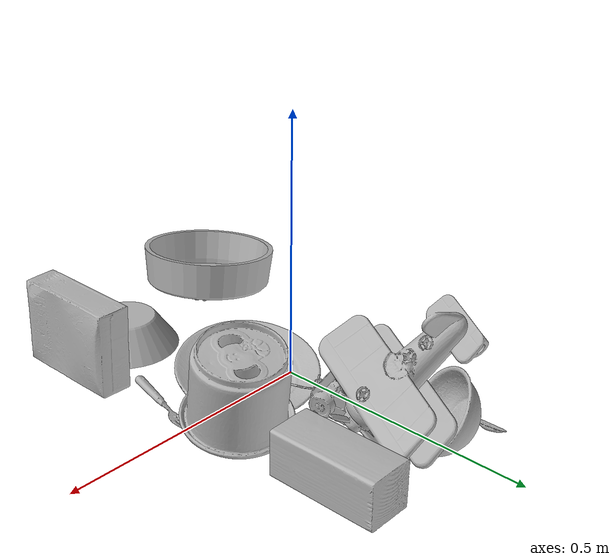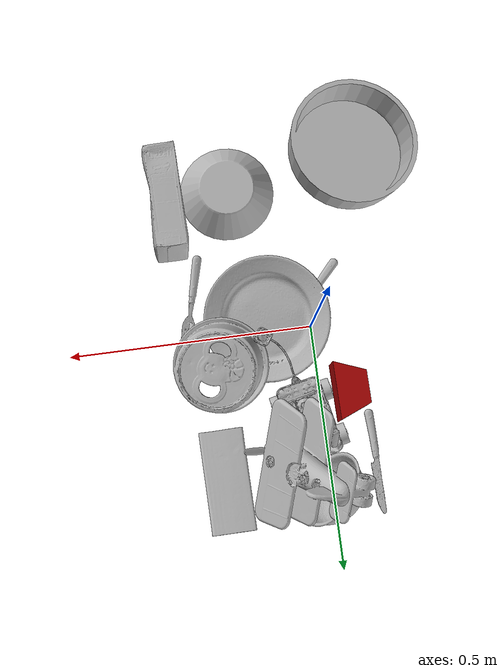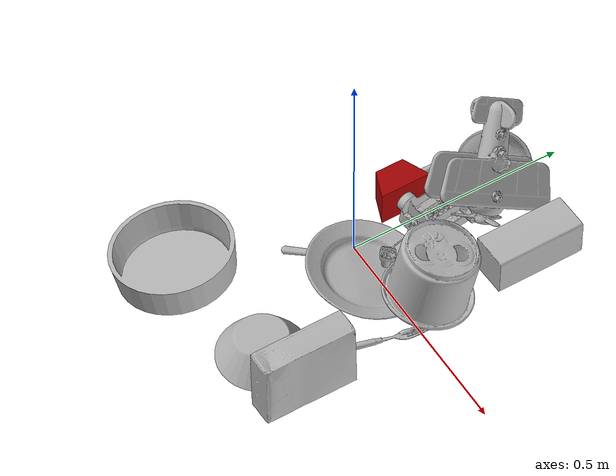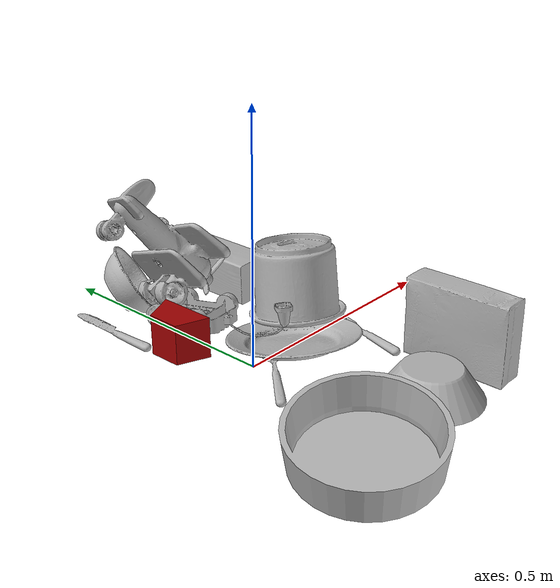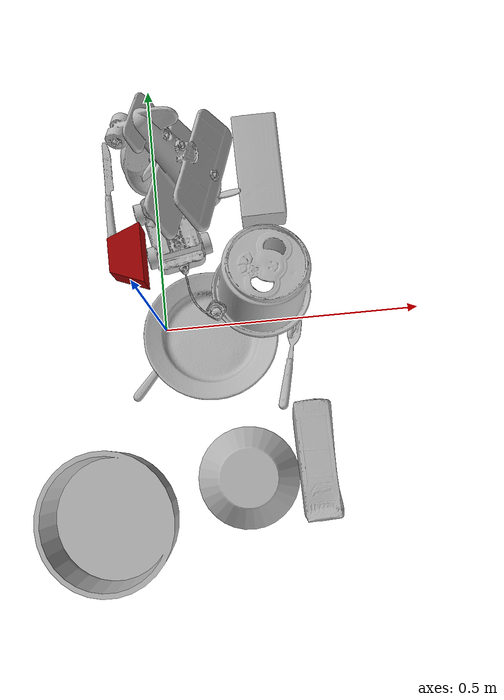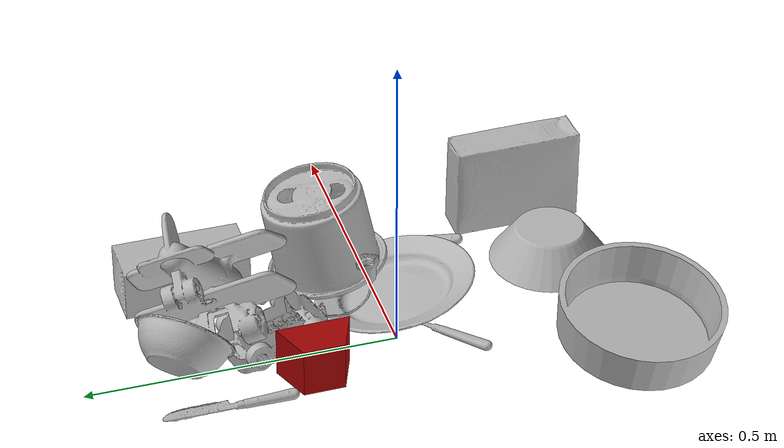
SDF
<sdf version="1.4">
  <world name="default">
    <light name="light1" type="point">
      <pose>0 0 1 0 0 0</pose>
      <diffuse>3 3 3 1</diffuse>
      <specular>3 3 3 1</specular>
    </light>
    <light name="light2" type="point">
      <pose>0 0.5 2 0 0 0</pose>
      <diffuse>1 1 1 1</diffuse>
      <specular>1 1 1 1</specular>
    </light>
    <light name="light3" type="point">
      <pose>0 0.5 2 0 0 0</pose>
      <diffuse>3 3 3 1</diffuse>
      <specular>3 3 3 1</specular>
    </light>
    <scene>
      <ambient>0.7 0.7 0.7</ambient>
    </scene>
    <model name="plate1">
      <link name="link_plate1">
        <collision name="default">
          <geometry>
            <mesh>
              <uri>model://plate/collision_meshes/collision.obj</uri>
              <scale>1.0 1.0 1.0</scale>
            </mesh>
          </geometry>
          <surface>
            <friction>
              <ode>
                <mu>0.5</mu>
                <mu2>0.5</mu2>
              </ode>
            </friction>
          <contact>
        <ode>
            <max_vel>0</max_vel>
            <min_depth>0.0001</min_depth>
            <kp>1e8</kp>
        </ode>
    </contact></surface>
        </collision>
        <visual name="default">
          <geometry>
            <mesh>
              <uri>model://plate/visual_meshes/visual.dae</uri>
              <scale>1.0 1.0 1.0</scale>
            </mesh>
          </geometry>
        </visual>
        <inertial>
          <mass>0.18013060092926025</mass>
          <pose>-0.0006044624606147408 0.0002782579977065325 -0.0010561981471255422 0.0022187543261248163 -0.003225499970721242 0.452618951787785</pose>
          <inertia>
            <ixx>0.00084265455</ixx>
            <iyy>0.000834595</iyy>
            <izz>0.0016481068</izz>
            <ixy>0</ixy>
            <ixz>0</ixz>
            <iyz>0</iyz>
          </inertia>
        </inertial>
      </link>
      <pose>0.0875125601887703 -0.02423202432692051 0.029876960441470146 -0.21210927722958772 -0.01004176545805839 -0.5371114681004846</pose>
    </model>
    <model name="plate2">
      <link name="link_plate2">
        <collision name="default">
          <geometry>
            <mesh>
              <uri>model://pan_tefal/collision_meshes/collision.obj</uri>
              <scale>1.0 1.0 1.0</scale>
            </mesh>
          </geometry>
          <surface>
            <friction>
              <ode>
                <mu>0.5</mu>
                <mu2>0.5</mu2>
              </ode>
            </friction>
          <contact>
        <ode>
            <max_vel>0</max_vel>
            <min_depth>0.0001</min_depth>
            <kp>1e8</kp>
        </ode>
    </contact></surface>
        </collision>
        <visual name="default">
          <geometry>
            <mesh>
              <uri>model://pan_tefal/visual_meshes/visual.dae</uri>
              <scale>1.0 1.0 1.0</scale>
            </mesh>
          </geometry>
        </visual>
        <inertial>
          <mass>1.1554980278015137</mass>
          <pose>-0.00018001958960667253 3.279018710600212e-05 -0.008514934219419956 0.0008190268412404128 -0.0003301434555644904 -0.33185316474518306</pose>
          <inertia>
            <ixx>0.007976347</ixx>
            <iyy>0.008027771</iyy>
            <izz>0.014682918</izz>
            <ixy>0</ixy>
            <ixz>0</ixz>
            <iyz>0</iyz>
          </inertia>
        </inertial>
      </link>
      <pose>-0.1286882758140564 -0.354366660118103 0.05685608088970184 -0.15908616914460416 0.012276188366651125 2.0978493002892065</pose>
    </model>
    <model name="bowl1">
      <link name="link_bowl1">
        <collision name="default">
          <geometry>
            <mesh>
              <uri>model://bowl/collision_meshes/collision.obj</uri>
              <scale>1.0 1.0 1.0</scale>
            </mesh>
          </geometry>
          <surface>
            <friction>
              <ode>
                <mu>0.5</mu>
                <mu2>0.5</mu2>
              </ode>
            </friction>
          <contact>
        <ode>
            <max_vel>0</max_vel>
            <min_depth>0.0001</min_depth>
            <kp>1e8</kp>
        </ode>
    </contact></surface>
        </collision>
        <visual name="default">
          <geometry>
            <mesh>
              <uri>model://bowl/visual_meshes/visual.dae</uri>
              <scale>1.0 1.0 1.0</scale>
            </mesh>
          </geometry>
        </visual>
        <inertial>
          <mass>0.08154366910457611</mass>
          <pose>0.0002044497523456812 -0.0010302083101123571 -0.0008042664267122746 -0.01576409235239578 0.014546819263349199 0.7140418673414882</pose>
          <inertia>
            <ixx>0.00018731231</ixx>
            <iyy>0.000183127</iyy>
            <izz>0.00031512365</izz>
            <ixy>0</ixy>
            <ixz>0</ixz>
            <iyz>0</iyz>
          </inertia>
        </inertial>
      </link>
      <pose>-0.003842337988317013 0.3479325473308563 0.057393696159124374 -0.7839589686362073 -0.6903742648212069 -2.7766881213005035</pose>
    </model>
    <model name="bowl2">
      <link name="link_bowl2">
        <collision name="default">
          <geometry>
            <mesh>
              <uri>model://bowl_a/collision_meshes/collision.obj</uri>
              <scale>1.0 1.0 1.0</scale>
            </mesh>
          </geometry>
          <surface>
            <friction>
              <ode>
                <mu>0.5</mu>
                <mu2>0.5</mu2>
              </ode>
            </friction>
          <contact>
        <ode>
            <max_vel>0</max_vel>
            <min_depth>0.0001</min_depth>
            <kp>1e8</kp>
        </ode>
    </contact></surface>
        </collision>
        <visual name="default">
          <geometry>
            <mesh>
              <uri>model://bowl_a/visual_meshes/visual.dae</uri>
              <scale>1.0 1.0 1.0</scale>
            </mesh>
          </geometry>
        </visual>
        <inertial>
          <mass>0.4363987147808075</mass>
          <pose>0.0002786752884276211 4.73113359475974e-05 -0.0013765294570475817 -0.0009805318297205425 -0.0010938254473046036 -0.19123908587825994</pose>
          <inertia>
            <ixx>0.0012424473</ixx>
            <iyy>0.001250075</iyy>
            <izz>0.0022097398</izz>
            <ixy>0</ixy>
            <ixz>0</ixz>
            <iyz>0</iyz>
          </inertia>
        </inertial>
      </link>
      <pose>0.13574431836605072 -0.30127283930778503 0.030101004987955093 3.1415743769095825 1.0735847737825789e-05 -0.08091751807818892</pose>
    </model>
    <model name="silverware1">
      <link name="link_silverware1">
        <collision name="default">
          <geometry>
            <mesh>
              <uri>model://spoon/collision_meshes/collision.obj</uri>
              <scale>1.0 1.0 1.0</scale>
            </mesh>
          </geometry>
          <surface>
            <friction>
              <ode>
                <mu>0.5</mu>
                <mu2>0.5</mu2>
              </ode>
            </friction>
          <contact>
        <ode>
            <max_vel>0</max_vel>
            <min_depth>0.0001</min_depth>
            <kp>1e8</kp>
        </ode>
    </contact></surface>
        </collision>
        <visual name="default">
          <geometry>
            <mesh>
              <uri>model://spoon/visual_meshes/visual.dae</uri>
              <scale>1.0 1.0 1.0</scale>
            </mesh>
          </geometry>
        </visual>
        <inertial>
          <mass>0.034700214862823486</mass>
          <pose>-0.00552632100880146 -0.0016034168656915426 -0.0007271654903888702 0.03521477925438783 -0.03906582568380071 0.006150611591128785</pose>
          <inertia>
            <ixx>1.9300821e-06</ixx>
            <iyy>0.00013203312</iyy>
            <izz>0.00013298499</izz>
            <ixy>0</ixy>
            <ixz>0</ixz>
            <iyz>0</iyz>
          </inertia>
        </inertial>
      </link>
      <pose>-0.0033931517973542213 -0.06117161363363266 0.010139290243387222 3.1033535836243322 -0.061916603635609205 0.8366788044471696</pose>
    </model>
    <model name="box1">
      <link name="link_box1">
        <collision name="default">
          <geometry>
            <mesh>
              <uri>model://cracker_box/collision_meshes/collision.obj</uri>
              <scale>1.0 1.0 1.0</scale>
            </mesh>
          </geometry>
          <surface>
            <friction>
              <ode>
                <mu>0.5</mu>
                <mu2>0.5</mu2>
              </ode>
            </friction>
          <contact>
        <ode>
            <max_vel>0</max_vel>
            <min_depth>0.0001</min_depth>
            <kp>1e8</kp>
        </ode>
    </contact></surface>
        </collision>
        <visual name="default">
          <geometry>
            <mesh>
              <uri>model://cracker_box/visual_meshes/visual.dae</uri>
              <scale>1.0 1.0 1.0</scale>
            </mesh>
          </geometry>
        </visual>
        <inertial>
          <mass>1.831273078918457</mass>
          <pose>0.000946414191275835 0.00025434247800149024 -0.0017029533628374338 -0.0003162074786093215 -0.01110648680647863 0.0025467950006863548</pose>
          <inertia>
            <ixx>0.0046579414</ixx>
            <iyy>0.0076911766</iyy>
            <izz>0.010976015</izz>
            <ixy>0</ixy>
            <ixz>0</ixz>
            <iyz>0</iyz>
          </inertia>
        </inertial>
      </link>
      <pose>0.2643791735172272 -0.278319776058197 0.08175767958164215 1.545232977891087 0.009040306292688398 1.591740193883429</pose>
    </model>
    <model name="box2">
      <link name="link_box2">
        <collision name="default">
          <geometry>
            <mesh>
              <uri>model://wood_block/collision_meshes/collision.obj</uri>
              <scale>1.0 1.0 1.0</scale>
            </mesh>
          </geometry>
          <surface>
            <friction>
              <ode>
                <mu>0.5</mu>
                <mu2>0.5</mu2>
              </ode>
            </friction>
          <contact>
        <ode>
            <max_vel>0</max_vel>
            <min_depth>0.0001</min_depth>
            <kp>1e8</kp>
        </ode>
    </contact></surface>
        </collision>
        <visual name="default">
          <geometry>
            <mesh>
              <uri>model://wood_block/visual_meshes/visual.dae</uri>
              <scale>1.0 1.0 1.0</scale>
            </mesh>
          </geometry>
        </visual>
        <inertial>
          <mass>1.0038666725158691</mass>
          <pose>-5.813315510749817e-06 -0.000570809468626976 0.0002640858292579651 -0.05221020962952386 -0.005192696059900718 -0.006861377701075274</pose>
          <inertia>
            <ixx>0.0013433257</ixx>
            <iyy>0.0042435657</iyy>
            <izz>0.0042276927</izz>
            <ixy>0</ixy>
            <ixz>0</ixz>
            <iyz>0</iyz>
          </inertia>
        </inertial>
      </link>
      <pose>0.2113640308380127 0.2950787842273712 0.04525797814130783 -0.005174855459377656 0.005734120341858144 1.5859794579817987</pose>
    </model>
    <model name="cup1">
      <link name="link_cup1">
        <collision name="default">
          <geometry>
            <mesh>
              <uri>model://i_cups/collision_meshes/collision.obj</uri>
              <scale>2.0 2.0 2.0</scale>
            </mesh>
          </geometry>
          <surface>
            <friction>
              <ode>
                <mu>0.5</mu>
                <mu2>0.5</mu2>
              </ode>
            </friction>
          <contact>
        <ode>
            <max_vel>0</max_vel>
            <min_depth>0.0001</min_depth>
            <kp>1e8</kp>
        </ode>
    </contact></surface>
        </collision>
        <visual name="default">
          <geometry>
            <mesh>
              <uri>model://i_cups/visual_meshes/visual.dae</uri>
              <scale>2.0 2.0 2.0</scale>
            </mesh>
          </geometry>
        </visual>
        <inertial>
          <mass>0.6038269996643066</mass>
          <pose>0.00022479970357380807 0.0003359453985467553 -0.001715799910016358 -0.02898255198870416 -0.03987340808103542 -0.3459203892901821</pose>
          <inertia>
            <ixx>0.0033440301</ixx>
            <iyy>0.003373493</iyy>
            <izz>0.0037374943</izz>
            <ixy>0</ixy>
            <ixz>0</ixz>
            <iyz>0</iyz>
          </inertia>
        </inertial>
      </link>
      <pose>0.19981732964515686 0.07031075656414032 0.09249027818441391 -3.0758995334301087 0.18729922513500874 1.4790808368229944</pose>
    </model>
    <model name="silverware2">
      <link name="link_silverware2">
        <collision name="default">
          <geometry>
            <mesh>
              <uri>model://knife/collision_meshes/collision.obj</uri>
              <scale>1.0 1.0 1.0</scale>
            </mesh>
          </geometry>
          <surface>
            <friction>
              <ode>
                <mu>0.5</mu>
                <mu2>0.5</mu2>
              </ode>
            </friction>
          <contact>
        <ode>
            <max_vel>0</max_vel>
            <min_depth>0.0001</min_depth>
            <kp>1e8</kp>
        </ode>
    </contact></surface>
        </collision>
        <visual name="default">
          <geometry>
            <mesh>
              <uri>model://knife/visual_meshes/visual.dae</uri>
              <scale>1.0 1.0 1.0</scale>
            </mesh>
          </geometry>
        </visual>
        <inertial>
          <mass>0.01351180113852024</mass>
          <pose>-0.023785246536135674 0.0015275131445378065 5.062015407020226e-05 0.073058244240525 0.017248418380522417 -0.007409818685807072</pose>
          <inertia>
            <ixx>3.8351965e-07</ixx>
            <iyy>5.1910156e-05</iyy>
            <izz>5.2033673e-05</izz>
            <ixy>0</ixy>
            <ixz>0</ixz>
            <iyz>0</iyz>
          </inertia>
        </inertial>
      </link>
      <pose>-0.09300953149795532 0.2914178669452667 0.008136807940900326 -0.2817498744669865 -0.008871647895344097 1.579885822969433</pose>
    </model>
    <model name="silverware3">
      <link name="link_silverware3">
        <collision name="default">
          <geometry>
            <mesh>
              <uri>model://fork/collision_meshes/collision.obj</uri>
              <scale>1.0 1.0 1.0</scale>
            </mesh>
          </geometry>
          <surface>
            <friction>
              <ode>
                <mu>0.5</mu>
                <mu2>0.5</mu2>
              </ode>
            </friction>
          <contact>
        <ode>
            <max_vel>0</max_vel>
            <min_depth>0.0001</min_depth>
            <kp>1e8</kp>
        </ode>
    </contact></surface>
        </collision>
        <visual name="default">
          <geometry>
            <mesh>
              <uri>model://fork/visual_meshes/visual.dae</uri>
              <scale>1.0 1.0 1.0</scale>
            </mesh>
          </geometry>
        </visual>
        <inertial>
          <mass>0.030749449506402016</mass>
          <pose>-0.029570044949650764 0.0004658822435885668 0.00032188615296036005 -0.013551266353778695 -0.010977839115777554 0.014453902178384312</pose>
          <inertia>
            <ixx>1.0779423e-06</ixx>
            <iyy>8.0277954e-05</iyy>
            <izz>8.076011e-05</izz>
            <ixy>0</ixy>
            <ixz>0</ixz>
            <iyz>0</iyz>
          </inertia>
        </inertial>
      </link>
      <pose>0.2374001443386078 -0.08222859352827072 0.005696925800293684 -0.1783868416603301 0.025347390680985873 1.3214198338656895</pose>
    </model>
    <model name="toy1">
      <link name="link_toy1">
        <collision name="default">
          <geometry>
            <mesh>
              <uri>model://e_toy_airplane/collision_meshes/collision.obj</uri>
              <scale>1.0 1.0 1.0</scale>
            </mesh>
          </geometry>
          <surface>
            <friction>
              <ode>
                <mu>0.5</mu>
                <mu2>0.5</mu2>
              </ode>
            </friction>
          <contact>
        <ode>
            <max_vel>0</max_vel>
            <min_depth>0.0001</min_depth>
            <kp>1e8</kp>
        </ode>
    </contact></surface>
        </collision>
        <visual name="default">
          <geometry>
            <mesh>
              <uri>model://e_toy_airplane/visual_meshes/visual.dae</uri>
              <scale>1.0 1.0 1.0</scale>
            </mesh>
          </geometry>
        </visual>
        <inertial>
          <mass>0.01770107075572014</mass>
          <pose>0.00011740486661437899 -2.248296732432209e-05 -0.011187206022441387 0.005518513464699853 0.009228302242376646 0.15041570361631973</pose>
          <inertia>
            <ixx>5.4025695e-06</ixx>
            <iyy>5.3473045e-06</iyy>
            <izz>1.6236847e-06</izz>
            <ixy>0</ixy>
            <ixz>0</ixz>
            <iyz>0</iyz>
          </inertia>
        </inertial>
      </link>
      <pose>-0.002985158935189247 0.32795050740242004 0.027855517342686653 1.346885714022872 -0.1812112946474784 -0.5836847471321228</pose>
    </model>
    <model name="toy2">
      <link name="link_toy2">
        <collision name="default">
          <geometry>
            <mesh>
              <uri>model://a_toy_airplane/collision_meshes/collision.obj</uri>
              <scale>1.0 1.0 1.0</scale>
            </mesh>
          </geometry>
          <surface>
            <friction>
              <ode>
                <mu>0.5</mu>
                <mu2>0.5</mu2>
              </ode>
            </friction>
          <contact>
        <ode>
            <max_vel>0</max_vel>
            <min_depth>0.0001</min_depth>
            <kp>1e8</kp>
        </ode>
    </contact></surface>
        </collision>
        <visual name="default">
          <geometry>
            <mesh>
              <uri>model://a_toy_airplane/visual_meshes/visual.dae</uri>
              <scale>1.0 1.0 1.0</scale>
            </mesh>
          </geometry>
        </visual>
        <inertial>
          <mass>1.6391528844833374</mass>
          <pose>0.02516508661210537 -0.003707319963723421 -0.0011962438002228737 -0.012016999892079352 -0.14663507149587088 0.004149061575203148</pose>
          <inertia>
            <ixx>0.0059525487</ixx>
            <iyy>0.008674072</iyy>
            <izz>0.01015627</izz>
            <ixy>0</ixy>
            <ixz>0</ixz>
            <iyz>0</iyz>
          </inertia>
        </inertial>
      </link>
      <pose>0.05341749265789986 0.30333253741264343 0.14782188832759857 -0.7365613767176001 0.9835516009748888 -0.9408493607667829</pose>
    </model>
    <model name="toy3">
      <link name="link_toy3">
        <collision name="default">
          <geometry>
            <mesh>
              <uri>model://g_lego_duplo/collision_meshes/collision.obj</uri>
              <scale>1.0 1.0 1.0</scale>
            </mesh>
          </geometry>
          <surface>
            <friction>
              <ode>
                <mu>0.5</mu>
                <mu2>0.5</mu2>
              </ode>
            </friction>
          <contact>
        <ode>
            <max_vel>0</max_vel>
            <min_depth>0.0001</min_depth>
            <kp>1e8</kp>
        </ode>
    </contact></surface>
        </collision>
        <visual name="default">
          <geometry>
            <mesh>
              <uri>model://g_lego_duplo/visual_meshes/visual.dae</uri>
              <scale>1.0 1.0 1.0</scale>
            </mesh>
          </geometry>
        </visual>
        <inertial>
          <mass>0.5092288255691528</mass>
          <pose>-0.05004768446087837 0.0017554641235619783 0.0038806775119155645 0.010963010010498962 0.03810823590924119 -0.09653024292159736</pose>
          <inertia>
            <ixx>0.00073787844</ixx>
            <iyy>0.002230844</iyy>
            <izz>0.002790868</izz>
            <ixy>0</ixy>
            <ixz>0</ixz>
            <iyz>0</iyz>
          </inertia>
        </inertial>
      </link>
      <pose>0.047376759350299835 0.13504460453987122 0.04166834056377411 3.0522372461971403 -0.12085329997401469 -1.348550827317003</pose>
    </model>
    <model name="toy4">
      <link name="link_toy4">
        <collision name="default">
          <geometry>
            <mesh>
              <uri>model://a_lego_duplo/collision_meshes/collision.obj</uri>
              <scale>1.0 1.0 1.0</scale>
            </mesh>
          </geometry>
          <surface>
            <friction>
              <ode>
                <mu>0.5</mu>
                <mu2>0.5</mu2>
              </ode>
            </friction>
          <contact>
        <ode>
            <max_vel>0</max_vel>
            <min_depth>0.0001</min_depth>
            <kp>1e8</kp>
        </ode>
    </contact></surface>
        </collision>
        <visual name="default">
          <geometry>
            <mesh>
              <uri>model://a_lego_duplo/visual_meshes/visual.dae</uri>
              <scale>1.0 1.0 1.0</scale>
            </mesh>
          </geometry>
        </visual>
        <inertial>
          <mass>0.03161923587322235</mass>
          <pose>-0.00011337598698446527 0.00018517524586059153 0.00036926084430888295 -0.014116977368405541 -0.00012565500284871778 6.143069663272407e-05</pose>
          <inertia>
            <ixx>4.0538393e-06</ixx>
            <iyy>9.081488e-06</iyy>
            <izz>1.1249442e-05</izz>
            <ixy>0</ixy>
            <ixz>0</ixz>
            <iyz>0</iyz>
          </inertia>
        </inertial>
      </link>
      <pose>-0.08581317216157913 -0.33025529980659485 0.013638981617987156 2.997660118114586 0.005597019347409665 2.1423894225922138</pose>
    </model>
    <model name="toy5">
      <link name="link_toy5">
        <collision name="default">
          <geometry>
            <mesh>
              <uri>model://prism/collision_meshes/collision.obj</uri>
              <scale>1.0 1.0 1.0</scale>
            </mesh>
          </geometry>
          <surface>
            <friction>
              <ode>
                <mu>0.5</mu>
                <mu2>0.5</mu2>
              </ode>
            </friction>
          <contact>
        <ode>
            <max_vel>0</max_vel>
            <min_depth>0.0001</min_depth>
            <kp>1e8</kp>
        </ode>
    </contact></surface>
        </collision>
        <visual name="default">
          <geometry>
            <mesh>
              <uri>model://prism/visual_meshes/visual.dae</uri>
              <scale>1.0 1.0 1.0</scale>
            </mesh>
          </geometry>
        </visual>
        <inertial>
          <mass>0.5650969743728638</mass>
          <pose>-9.85359656624496e-05 -4.96157269935793e-07 -0.0033869100734591484 0.0 0.006559179369129768 0.0</pose>
          <inertia>
            <ixx>0.00050999306</ixx>
            <iyy>0.00061633316</iyy>
            <izz>0.00075493456</izz>
            <ixy>0</ixy>
            <ixz>0</ixz>
            <iyz>0</iyz>
          </inertia>
        </inertial>
      </link>
      <pose>-0.06042180582880974 0.14347700774669647 0.041588492691516876 1.5836357335981508 5.533667161719638e-07 -1.5570249849386049</pose>
    </model>
  <physics type="ode">
      <max_contacts>50</max_contacts>
      <ode>
        <solver>
          <type>quick</type>
          <iters>75</iters>
        </solver>
        <constraints>
          <contact_max_correcting_vel>0</contact_max_correcting_vel>
          <contact_surface_layer>0</contact_surface_layer>
        </constraints>
      </ode>
    </physics></world>
</sdf>
